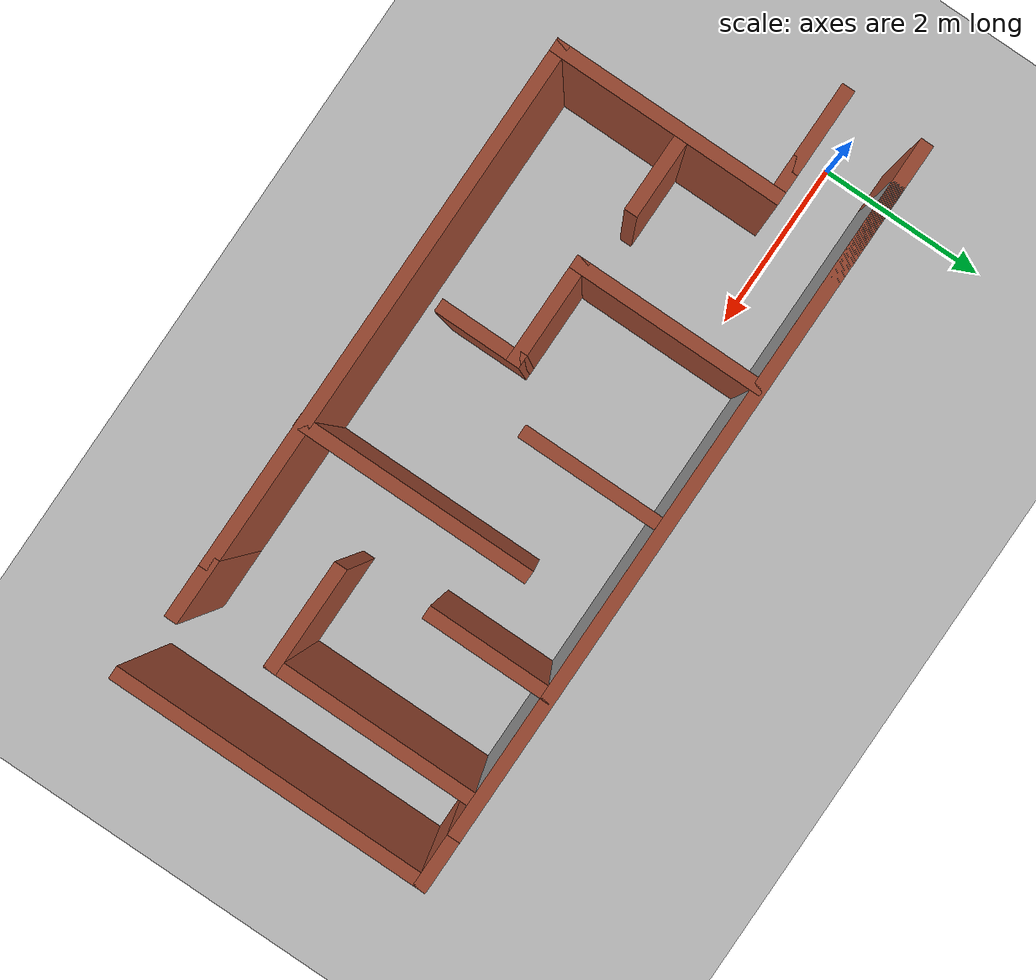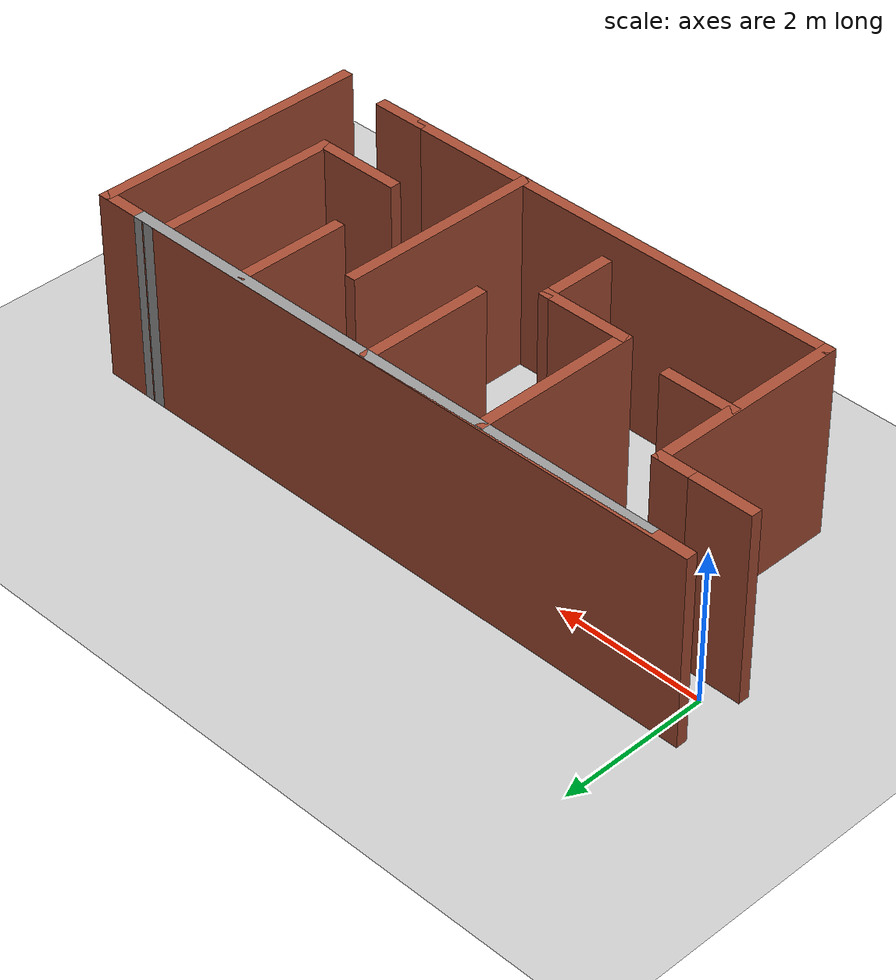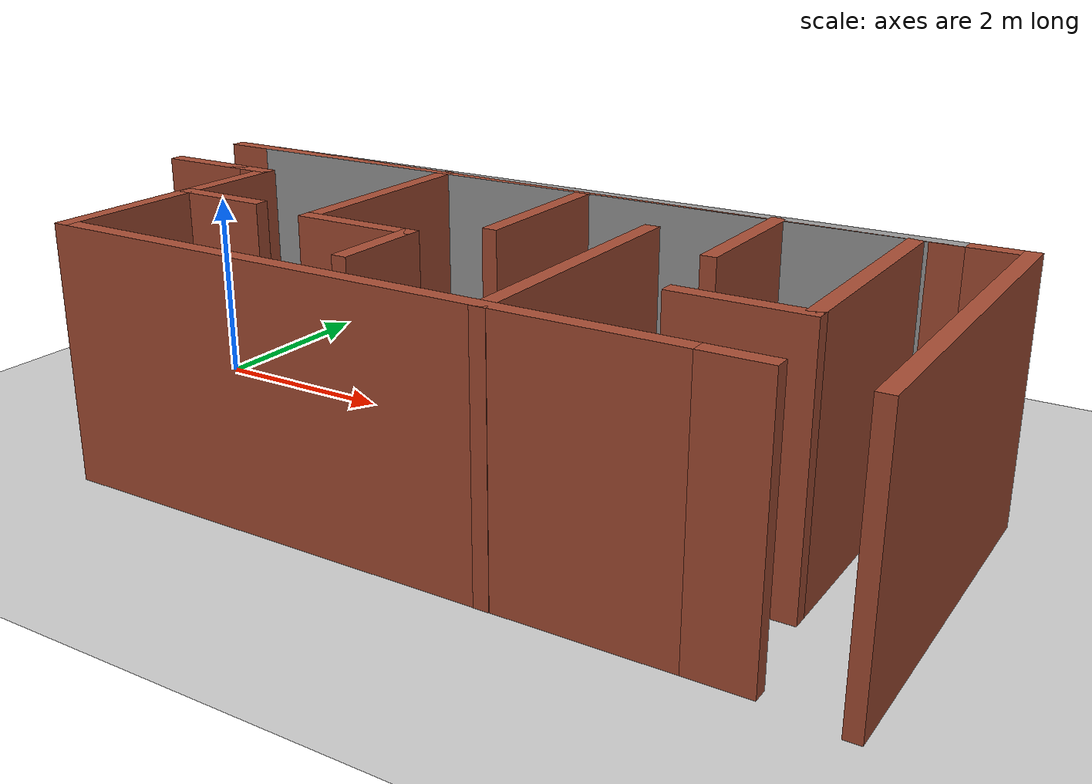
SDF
<sdf version="1.7">
 <world name="default">
  <light name="sun" type="directional">
   <pose>0 0 10 0 -0 0</pose>
   <diffuse>0.8 0.8 0.8 1</diffuse>
   <specular>0.2 0.2 0.2 1</specular>
   <attenuation>
    <range>1000</range>
    <constant>0.9</constant>
    <linear>0.01</linear>
    <quadratic>0.001</quadratic>
   </attenuation>
   <direction>-0.5 0.1 -0.9</direction>
   <spot><inner_angle>0</inner_angle><outer_angle>0</outer_angle><falloff>0</falloff></spot>
  </light>
  <model name="ground_plane">
   <static>1</static>
   <link name="link">
    <collision name="collision">
     <geometry><plane><normal>0 0 1</normal><size>100 100</size></plane></geometry>
     <surface><friction><ode><mu>100</mu><mu2>50</mu2></ode></friction></surface>
    </collision>
    <visual name="visual">
     <cast_shadows>0</cast_shadows>
     <geometry><plane><normal>0 0 1</normal><size>100 100</size></plane></geometry>
     <material>
      <script><uri>file://media/materials/scripts/gazebo.material</uri><name>Gazebo/Grey</name></script>
     </material>
    </visual>
   </link>
  </model>
  <gravity>0 0 -9.8</gravity>
  <magnetic_field>6e-06 2.3e-05 -4.2e-05</magnetic_field>
  <atmosphere type="adiabatic"/>
  <physics type="ode">
   <max_step_size>0.001</max_step_size>
   <real_time_factor>1</real_time_factor>
   <real_time_update_rate>1000</real_time_update_rate>
  </physics>
  <scene><ambient>0.4 0.4 0.4 1</ambient><background>0.7 0.7 0.7 1</background><shadows>1</shadows></scene>
  <spherical_coordinates>
   <surface_model>EARTH_WGS84</surface_model>
   <latitude_deg>0</latitude_deg>
   <longitude_deg>0</longitude_deg>
   <elevation>0</elevation>
   <heading_deg>0</heading_deg>
  </spherical_coordinates>
  <model name="Untitled">
   <pose>4.1155 -1.188 0 0 -0 0</pose>
   <link name="Wall_10">
    <collision name="Wall_10_Collision">
     <geometry><box><size>8.25 0.15 2.5</size></box></geometry>
     <pose>0 0 1.25 0 -0 0</pose>
    </collision>
    <visual name="Wall_10_Visual">
     <pose>0 0 1.25 0 -0 0</pose>
     <geometry><box><size>8.25 0.15 2.5</size></box></geometry>
     <material>
      <script><uri>file://media/materials/scripts/gazebo.material</uri><name>Gazebo/Bricks</name></script>
      <ambient>1 1 1 1</ambient>
     </material>
     <meta><layer>0</layer></meta>
    </visual>
    <pose>-0.2945 1.8 0 0 -0 3.14159</pose>
   </link>
   <link name="Wall_12">
    <collision name="Wall_12_Collision">
     <geometry><box><size>0.5 0.15 2.5</size></box></geometry>
     <pose>0 0 1.25 0 -0 0</pose>
    </collision>
    <visual name="Wall_12_Visual">
     <pose>0 0 1.25 0 -0 0</pose>
     <geometry><box><size>0.5 0.15 2.5</size></box></geometry>
     <material>
      <script><uri>file://media/materials/scripts/gazebo.material</uri><name>Gazebo/Bricks</name></script>
      <ambient>1 1 1 1</ambient>
     </material>
     <meta><layer>0</layer></meta>
    </visual>
    <pose>-3.3305 0.859998 0 0 -0 0</pose>
   </link>
   <link name="Wall_15">
    <collision name="Wall_15_Collision">
     <geometry><box><size>6.25 0.15 2.5</size></box></geometry>
     <pose>0 0 1.25 0 -0 0</pose>
    </collision>
    <visual name="Wall_15_Visual">
     <pose>0 0 1.25 0 -0 0</pose>
     <geometry><box><size>6.25 0.15 2.5</size></box></geometry>
     <material>
      <script><uri>file://media/materials/scripts/gazebo.material</uri><name>Gazebo/Bricks</name></script>
      <ambient>1 1 1 1</ambient>
     </material>
     <meta><layer>0</layer></meta>
    </visual>
    <pose>-0.1055 -1.695 0 0 -0 0</pose>
   </link>
   <link name="Wall_17">
    <collision name="Wall_17_Collision">
     <geometry><box><size>1 0.15 2.5</size></box></geometry>
     <pose>0 0 1.25 0 -0 0</pose>
    </collision>
    <visual name="Wall_17_Visual">
     <pose>0 0 1.25 0 -0 0</pose>
     <geometry><box><size>1 0.15 2.5</size></box></geometry>
     <material>
      <script><uri>file://media/materials/scripts/gazebo.material</uri><name>Gazebo/Bricks</name></script>
      <ambient>1 1 1 1</ambient>
     </material>
     <meta><layer>0</layer></meta>
    </visual>
    <pose>-2.7105 -0.212002 0 0 -0 0</pose>
   </link>
   <link name="Wall_21">
    <collision name="Wall_21_Collision">
     <geometry><box><size>2.25 0.15 2.5</size></box></geometry>
     <pose>0 0 1.25 0 -0 0</pose>
    </collision>
    <visual name="Wall_21_Visual">
     <pose>0 0 1.25 0 -0 0</pose>
     <geometry><box><size>2.25 0.15 2.5</size></box></geometry>
     <material>
      <script><uri>file://media/materials/scripts/gazebo.material</uri><name>Gazebo/Bricks</name></script>
      <ambient>1 1 1 1</ambient>
     </material>
     <meta><layer>0</layer></meta>
    </visual>
    <pose>-1.5095 0.711998 0 0 -0 -1.5708</pose>
   </link>
   <link name="Wall_22">
    <collision name="Wall_22_Collision">
     <geometry><box><size>1.25 0.15 2.5</size></box></geometry>
     <pose>0 0 1.25 0 -0 0</pose>
    </collision>
    <visual name="Wall_22_Visual">
     <pose>0 0 1.25 0 -0 0</pose>
     <geometry><box><size>1.25 0.15 2.5</size></box></geometry>
     <material>
      <script><uri>file://media/materials/scripts/gazebo.material</uri><name>Gazebo/Bricks</name></script>
      <ambient>1 1 1 1</ambient>
     </material>
     <meta><layer>0</layer></meta>
    </visual>
    <pose>-0.9595 -0.338002 0 0 -0 0</pose>
   </link>
   <link name="Wall_23">
    <collision name="Wall_23_Collision">
     <geometry><box><size>1 0.15 2.5</size></box></geometry>
     <pose>0 0 1.25 0 -0 0</pose>
    </collision>
    <visual name="Wall_23_Visual">
     <pose>0 0 1.25 0 -0 0</pose>
     <geometry><box><size>1 0.15 2.5</size></box></geometry>
     <material>
      <script><uri>file://media/materials/scripts/gazebo.material</uri><name>Gazebo/Bricks</name></script>
      <ambient>1 1 1 1</ambient>
     </material>
     <meta><layer>0</layer></meta>
    </visual>
    <pose>-0.4095 -0.763002 0 0 -0 -1.5708</pose>
   </link>
   <link name="Wall_25">
    <collision name="Wall_25_Collision">
     <geometry><box><size>1.75 0.15 2.5</size></box></geometry>
     <pose>0 0 1.25 0 -0 0</pose>
    </collision>
    <visual name="Wall_25_Visual">
     <pose>0 0 1.25 0 -0 0</pose>
     <geometry><box><size>1.75 0.15 2.5</size></box></geometry>
     <material>
      <script><uri>file://media/materials/scripts/gazebo.material</uri><name>Gazebo/Bricks</name></script>
      <ambient>1 1 1 1</ambient>
     </material>
     <meta><layer>0</layer></meta>
    </visual>
    <pose>0.1515 0.979998 0 0 -0 -1.5708</pose>
   </link>
   <link name="Wall_27">
    <collision name="Wall_27_Collision">
     <geometry><box><size>2.75 0.15 2.5</size></box></geometry>
     <pose>0 0 1.25 0 -0 0</pose>
    </collision>
    <visual name="Wall_27_Visual">
     <pose>0 0 1.25 0 -0 0</pose>
     <geometry><box><size>2.75 0.15 2.5</size></box></geometry>
     <material>
      <script><uri>file://media/materials/scripts/gazebo.material</uri><name>Gazebo/Bricks</name></script>
      <ambient>1 1 1 1</ambient>
     </material>
     <meta><layer>0</layer></meta>
    </visual>
    <pose>1.2995 -0.399002 0 0 -0 1.5708</pose>
   </link>
   <link name="Wall_29">
    <collision name="Wall_29_Collision">
     <geometry><box><size>1.5 0.15 2.5</size></box></geometry>
     <pose>0 0 1.25 0 -0 0</pose>
    </collision>
    <visual name="Wall_29_Visual">
     <pose>0 0 1.25 0 -0 0</pose>
     <geometry><box><size>1.5 0.15 2.5</size></box></geometry>
     <material>
      <script><uri>file://media/materials/scripts/gazebo.material</uri><name>Gazebo/Bricks</name></script>
      <ambient>1 1 1 1</ambient>
     </material>
     <meta><layer>0</layer></meta>
    </visual>
    <pose>2.1435 1.079 0 0 -0 -1.5708</pose>
   </link>
   <link name="Wall_31">
    <collision name="Wall_31_Collision">
     <geometry><box><size>2.5 0.15 2.5</size></box></geometry>
     <pose>0 0 1.25 0 -0 0</pose>
    </collision>
    <visual name="Wall_31_Visual">
     <pose>0 0 1.25 0 -0 0</pose>
     <geometry><box><size>2.5 0.15 2.5</size></box></geometry>
     <material>
      <script><uri>file://media/materials/scripts/gazebo.material</uri><name>Gazebo/Bricks</name></script>
      <ambient>1 1 1 1</ambient>
     </material>
     <meta><layer>0</layer></meta>
    </visual>
    <pose>3.4125 0.560998 0 0 -0 -1.5708</pose>
   </link>
   <link name="Wall_32">
    <collision name="Wall_32_Collision">
     <geometry><box><size>1.25 0.15 2.5</size></box></geometry>
     <pose>0 0 1.25 0 -0 0</pose>
    </collision>
    <visual name="Wall_32_Visual">
     <pose>0 0 1.25 0 -0 0</pose>
     <geometry><box><size>1.25 0.15 2.5</size></box></geometry>
     <material>
      <script><uri>file://media/materials/scripts/gazebo.material</uri><name>Gazebo/Bricks</name></script>
      <ambient>1 1 1 1</ambient>
     </material>
     <meta><layer>0</layer></meta>
    </visual>
    <pose>2.8625 -0.614002 0 0 -0 3.14159</pose>
   </link>
   <link name="Wall_34">
    <collision name="Wall_34_Collision">
     <geometry><box><size>0.75 0.15 2.5</size></box></geometry>
     <pose>0 0 1.25 0 -0 0</pose>
    </collision>
    <visual name="Wall_34_Visual">
     <pose>0 0 1.25 0 -0 0</pose>
     <geometry><box><size>0.75 0.15 2.5</size></box></geometry>
     <material>
      <script><uri>file://media/materials/scripts/gazebo.material</uri><name>Gazebo/Bricks</name></script>
      <ambient>1 1 1 1</ambient>
     </material>
     <meta><layer>0</layer></meta>
    </visual>
    <pose>4.0555 1.8 0 0 -0 0</pose>
   </link>
   <link name="Wall_35">
    <collision name="Wall_35_Collision">
     <geometry><box><size>3.75 0.15 2.5</size></box></geometry>
     <pose>0 0 1.25 0 -0 0</pose>
    </collision>
    <visual name="Wall_35_Visual">
     <pose>0 0 1.25 0 -0 0</pose>
     <geometry><box><size>3.75 0.15 2.5</size></box></geometry>
     <material>
      <script><uri>file://media/materials/scripts/gazebo.material</uri><name>Gazebo/Bricks</name></script>
      <ambient>1 1 1 1</ambient>
     </material>
     <meta><layer>0</layer></meta>
    </visual>
    <pose>4.3555 -2e-06 0 0 -0 -1.5708</pose>
   </link>
   <link name="Wall_37">
    <collision name="Wall_37_Collision">
     <geometry><box><size>0.75 0.15 2.5</size></box></geometry>
     <pose>0 0 1.25 0 -0 0</pose>
    </collision>
    <visual name="Wall_37_Visual">
     <pose>0 0 1.25 0 -0 0</pose>
     <geometry><box><size>0.75 0.15 2.5</size></box></geometry>
     <material>
      <script><uri>file://media/materials/scripts/gazebo.material</uri><name>Gazebo/Bricks</name></script>
      <ambient>1 1 1 1</ambient>
     </material>
     <meta><layer>0</layer></meta>
    </visual>
    <pose>3.2445 -1.695 0 0 -0 0</pose>
   </link>
   <link name="Wall_39">
    <collision name="Wall_39_Collision">
     <geometry><box><size>2.70477 0.15 2.5</size></box></geometry>
     <pose>0 0 1.25 0 -0 0</pose>
    </collision>
    <visual name="Wall_39_Visual">
     <pose>0 0 1.25 0 -0 0</pose>
     <geometry><box><size>2.70477 0.15 2.5</size></box></geometry>
     <material>
      <script><uri>file://media/materials/scripts/gazebo.material</uri><name>Gazebo/Bricks</name></script>
      <ambient>1 1 1 1</ambient>
     </material>
     <meta><layer>0</layer></meta>
    </visual>
    <pose>-3.1555 -0.417502 0 0 -0 -1.5708</pose>
   </link>
   <link name="Wall_6">
    <collision name="Wall_6_Collision">
     <geometry><box><size>1 0.15 2.5</size></box></geometry>
     <pose>0 0 1.25 0 -0 0</pose>
    </collision>
    <visual name="Wall_6_Visual">
     <pose>0 0 1.25 0 -0 0</pose>
     <geometry><box><size>1 0.15 2.5</size></box></geometry>
     <material>
      <script><uri>file://media/materials/scripts/gazebo.material</uri><name>Gazebo/Bricks</name></script>
      <ambient>1 1 1 1</ambient>
     </material>
     <meta><layer>0</layer></meta>
    </visual>
    <pose>-3.9305 0.859998 0 0 -0 0</pose>
   </link>
   <link name="Wall_9">
    <collision name="Wall_9_Collision">
     <geometry><box><size>7.75 0.15 2.5</size></box></geometry>
     <pose>0 0 1.25 0 -0 0</pose>
    </collision>
    <visual name="Wall_9_Visual">
     <pose>0 0 1.25 0 -0 0</pose>
     <geometry><box><size>7.75 0.15 2.5</size></box></geometry>
     <material>
      <script><uri>file://media/materials/scripts/gazebo.material</uri><name>Gazebo/Grey</name></script>
      <ambient>1 1 1 1</ambient>
     </material>
     <meta><layer>0</layer></meta>
    </visual>
    <pose>-0.044336 1.79979 0 0 -0 5.6e-05</pose>
   </link>
   <static>1</static>
  </model>
 </world>
</sdf>
